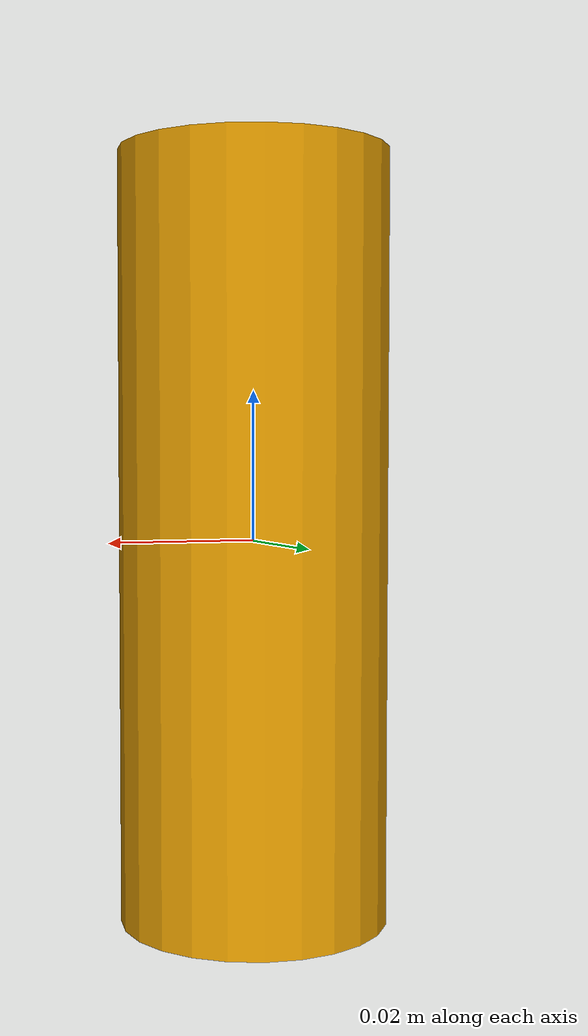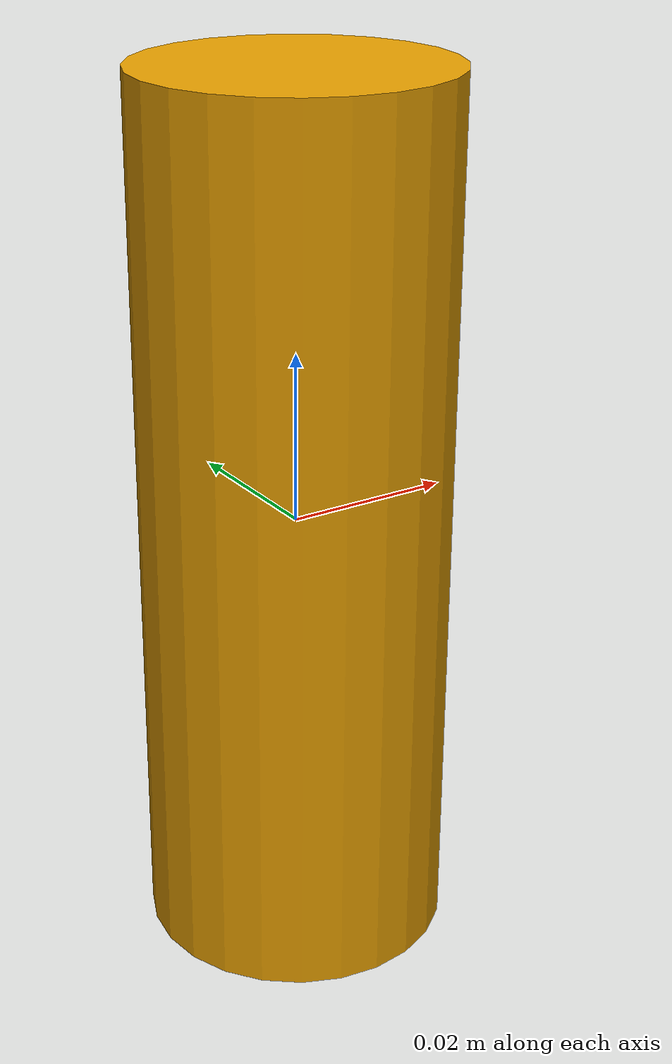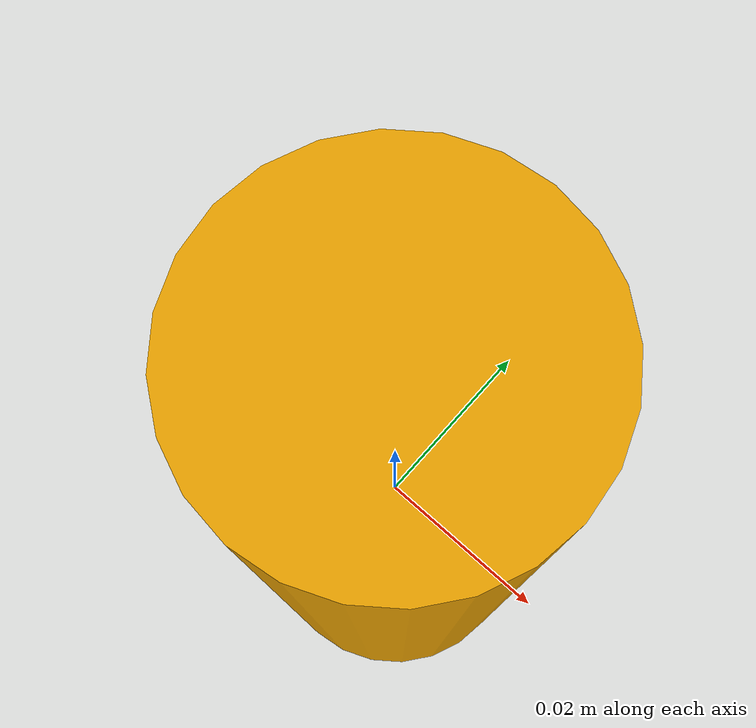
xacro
<?xml version="1.0"?>
<robot name="test_tube" xmlns:xacro="http://www.ros.org/wiki/xacro">
  <xacro:arg name="prefix" default="test_tube_1_"/>

  <!-- Includo URDF e argomento -->
  <xacro:include filename="$(find YumiProjectThesis)/urdf/test_tube/test_tube.urdf.xacro"/>
  <xacro:test_tube_urdf prefix="$(arg prefix)"/>

  <!-- Gazebo -->
  <xacro:include filename="$(find YumiProjectThesis)/urdf/test_tube/test_tube.gazebo.xacro"/>
  <xacro:test_tube_gazebo prefix="$(arg prefix)"/>
</robot>

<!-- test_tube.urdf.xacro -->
<robot xmlns:xacro="http://www.ros.org/wiki/xacro">
  <xacro:macro name="test_tube_urdf" params="prefix">
    <link name="${prefix}tube_link">
      <visual name="tube_visual">
        <origin xyz="0 0 0" rpy="0 0 0"/>
        <geometry>
          <cylinder radius="0.0180" length="0.1030"/>
        </geometry>
      </visual>
      <collision name="tube_collision">
        <origin xyz="0 0 0" rpy="0 0 0"/>
        <geometry>
          <cylinder radius="0.0180" length="0.1030"/>
        </geometry>
      </collision>
      <inertial>
        <mass value="0.050"/>
        <origin xyz="0 0 0" rpy="0 0 0"/>
        <!--Inertia: I=1/12 mL^2 -->
        <inertia ixx="0.000044204" iyy="0.000044204" izz="0"
          ixy="0" ixz="0" iyz="0"/>
      </inertial>
    </link>
  </xacro:macro>
</robot>
